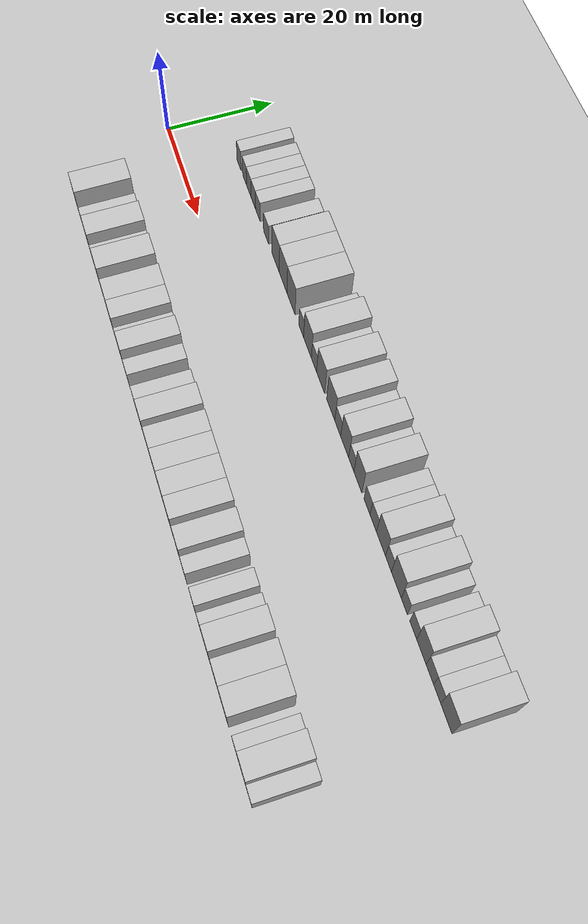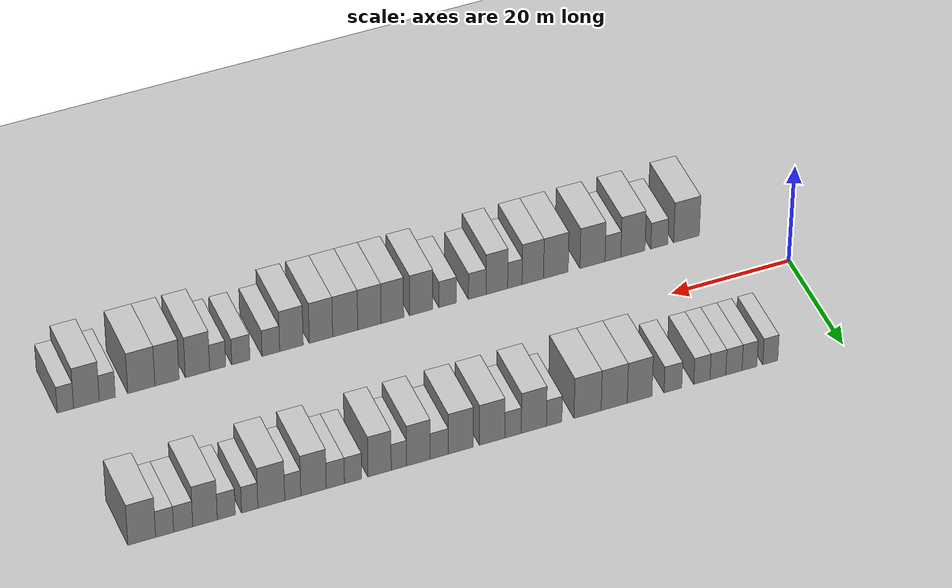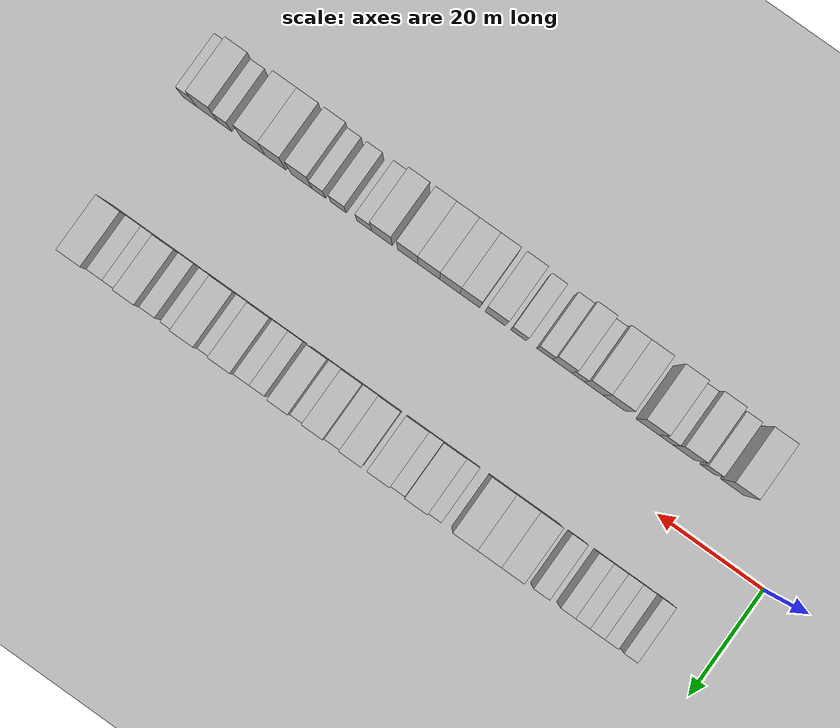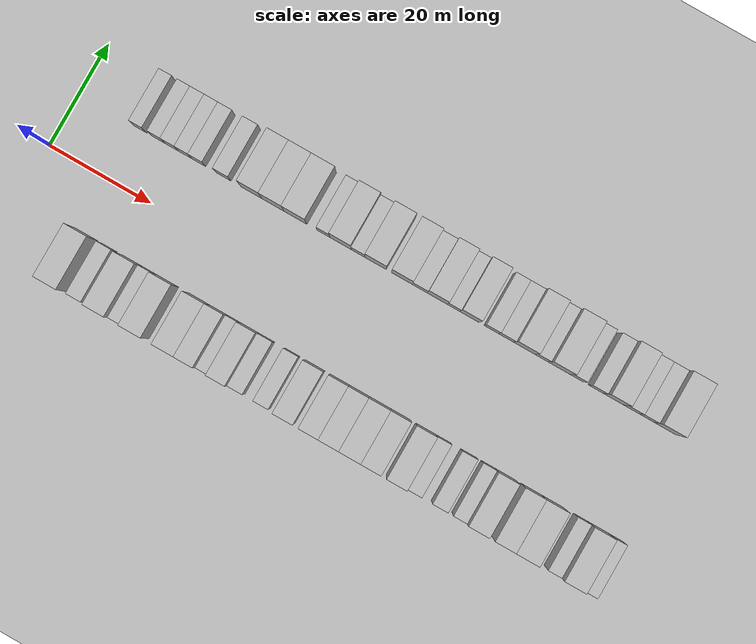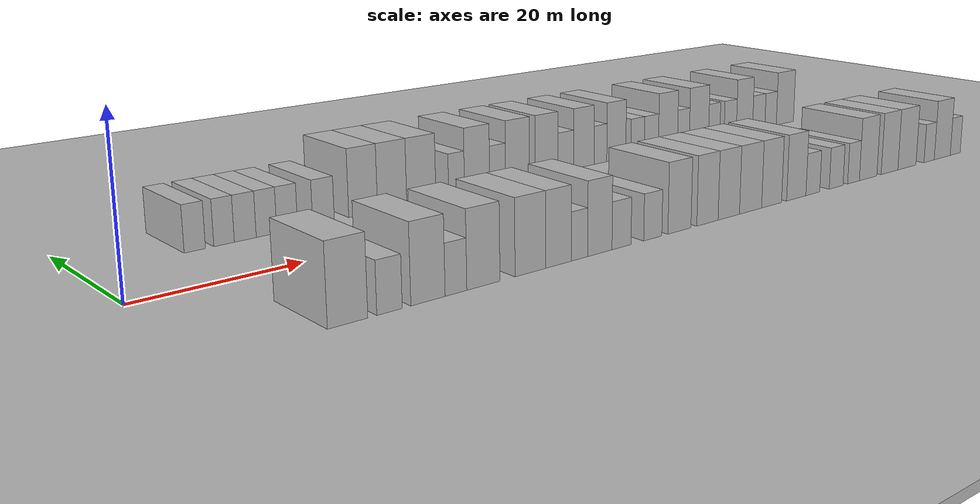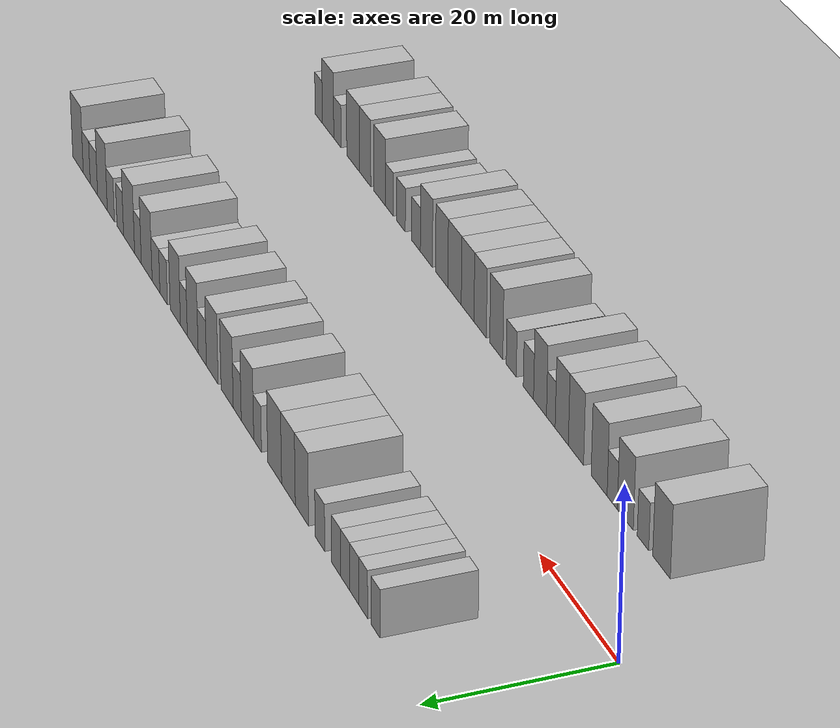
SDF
<sdf version="1.6">
 <world name="default">
  <include><name>ground_plane_1</name><uri>model://HANNAS_ground_plane</uri></include>
  <include>
   <name>ground_plane_2</name>
   <uri>model://HANNAS_ground_plane</uri>
   <pose>100 0 0  0 0 0</pose>
  </include>
  <model name="building_1">
   <static>1</static>
   <pose>12.2512 15.0000 0 0.000000 0.000000 1.570796</pose>
   <link name="link">
    <pose>0 0 3.00 0 0 0</pose>
    <collision name="collision"><geometry><box><size>10.0000 2.5024 6.0000</size></box></geometry></collision>
    <visual name="visual">
     <cast_shadows>0</cast_shadows>
     <geometry><box><size>10.0000 2.5024 6.0000</size></box></geometry>
     <material>
      <script>
       <uri>model://HANNAS_wall/materials/scripts</uri>
       <uri>model://HANNAS_wall/materials/textures</uri>
       <name>vrc/HANNAS_wall</name>
      </script>
     </material>
    </visual>
   </link>
  </model>
  <model name="building_2">
   <static>1</static>
   <pose>15.7438 15.0000 0 0.000000 0.000000 1.570796</pose>
   <link name="link">
    <pose>0 0 3.00 0 0 0</pose>
    <collision name="collision"><geometry><box><size>10.0000 2.4828 6.0000</size></box></geometry></collision>
    <visual name="visual">
     <cast_shadows>0</cast_shadows>
     <geometry><box><size>10.0000 2.4828 6.0000</size></box></geometry>
     <material>
      <script>
       <uri>model://HANNAS_wall/materials/scripts</uri>
       <uri>model://HANNAS_wall/materials/textures</uri>
       <name>vrc/HANNAS_wall</name>
      </script>
     </material>
    </visual>
   </link>
  </model>
  <model name="building_3">
   <static>1</static>
   <pose>18.3443 15.0000 0 0.000000 0.000000 1.570796</pose>
   <link name="link">
    <pose>0 0 3.00 0 0 0</pose>
    <collision name="collision"><geometry><box><size>10.0000 2.7182 6.0000</size></box></geometry></collision>
    <visual name="visual">
     <cast_shadows>0</cast_shadows>
     <geometry><box><size>10.0000 2.7182 6.0000</size></box></geometry>
     <material>
      <script>
       <uri>model://HANNAS_wall/materials/scripts</uri>
       <uri>model://HANNAS_wall/materials/textures</uri>
       <name>vrc/HANNAS_wall</name>
      </script>
     </material>
    </visual>
   </link>
  </model>
  <model name="building_4">
   <static>1</static>
   <pose>21.0118 15.0000 0 0.000000 0.000000 1.570796</pose>
   <link name="link">
    <pose>0 0 3.00 0 0 0</pose>
    <collision name="collision"><geometry><box><size>10.0000 2.6168 6.0000</size></box></geometry></collision>
    <visual name="visual">
     <cast_shadows>0</cast_shadows>
     <geometry><box><size>10.0000 2.6168 6.0000</size></box></geometry>
     <material>
      <script>
       <uri>model://HANNAS_wall/materials/scripts</uri>
       <uri>model://HANNAS_wall/materials/textures</uri>
       <name>vrc/HANNAS_wall</name>
      </script>
     </material>
    </visual>
   </link>
  </model>
  <model name="building_5">
   <static>1</static>
   <pose>23.6738 15.0000 0 0.000000 0.000000 1.570796</pose>
   <link name="link">
    <pose>0 0 3.00 0 0 0</pose>
    <collision name="collision"><geometry><box><size>10.0000 2.7073 6.0000</size></box></geometry></collision>
    <visual name="visual">
     <cast_shadows>0</cast_shadows>
     <geometry><box><size>10.0000 2.7073 6.0000</size></box></geometry>
     <material>
      <script>
       <uri>model://HANNAS_wall/materials/scripts</uri>
       <uri>model://HANNAS_wall/materials/textures</uri>
       <name>vrc/HANNAS_wall</name>
      </script>
     </material>
    </visual>
   </link>
  </model>
  <model name="building_6">
   <static>1</static>
   <pose>28.4945 15.0000 0 0.000000 0.000000 1.570796</pose>
   <link name="link">
    <pose>0 0 3.00 0 0 0</pose>
    <collision name="collision"><geometry><box><size>10.0000 2.9341 6.0000</size></box></geometry></collision>
    <visual name="visual">
     <cast_shadows>0</cast_shadows>
     <geometry><box><size>10.0000 2.9341 6.0000</size></box></geometry>
     <material>
      <script>
       <uri>model://HANNAS_wall/materials/scripts</uri>
       <uri>model://HANNAS_wall/materials/textures</uri>
       <name>vrc/HANNAS_wall</name>
      </script>
     </material>
    </visual>
   </link>
  </model>
  <model name="building_7">
   <static>1</static>
   <pose>34.0111 15.0000 0 0.000000 0.000000 1.570796</pose>
   <link name="link">
    <pose>0 0 4.50 0 0 0</pose>
    <collision name="collision"><geometry><box><size>10.0000 4.0992 9.0000</size></box></geometry></collision>
    <visual name="visual">
     <cast_shadows>0</cast_shadows>
     <geometry><box><size>10.0000 4.0992 9.0000</size></box></geometry>
     <material>
      <script>
       <uri>model://HANNAS_wall/materials/scripts</uri>
       <uri>model://HANNAS_wall/materials/textures</uri>
       <name>vrc/HANNAS_wall</name>
      </script>
     </material>
    </visual>
   </link>
  </model>
  <model name="building_8">
   <static>1</static>
   <pose>38.2104 15.0000 0 0.000000 0.000000 1.570796</pose>
   <link name="link">
    <pose>0 0 4.50 0 0 0</pose>
    <collision name="collision"><geometry><box><size>10.0000 4.2993 9.0000</size></box></geometry></collision>
    <visual name="visual">
     <cast_shadows>0</cast_shadows>
     <geometry><box><size>10.0000 4.2993 9.0000</size></box></geometry>
     <material>
      <script>
       <uri>model://HANNAS_wall/materials/scripts</uri>
       <uri>model://HANNAS_wall/materials/textures</uri>
       <name>vrc/HANNAS_wall</name>
      </script>
     </material>
    </visual>
   </link>
  </model>
  <model name="building_9">
   <static>1</static>
   <pose>42.5813 15.0000 0 0.000000 0.000000 1.570796</pose>
   <link name="link">
    <pose>0 0 4.50 0 0 0</pose>
    <collision name="collision"><geometry><box><size>10.0000 4.4426 9.0000</size></box></geometry></collision>
    <visual name="visual">
     <cast_shadows>0</cast_shadows>
     <geometry><box><size>10.0000 4.4426 9.0000</size></box></geometry>
     <material>
      <script>
       <uri>model://HANNAS_wall/materials/scripts</uri>
       <uri>model://HANNAS_wall/materials/textures</uri>
       <name>vrc/HANNAS_wall</name>
      </script>
     </material>
    </visual>
   </link>
  </model>
  <model name="building_10">
   <static>1</static>
   <pose>48.0679 15.0000 0 0.000000 0.000000 1.570796</pose>
   <link name="link">
    <pose>0 0 3.00 0 0 0</pose>
    <collision name="collision"><geometry><box><size>10.0000 2.5305 6.0000</size></box></geometry></collision>
    <visual name="visual">
     <cast_shadows>0</cast_shadows>
     <geometry><box><size>10.0000 2.5305 6.0000</size></box></geometry>
     <material>
      <script>
       <uri>model://HANNAS_wall/materials/scripts</uri>
       <uri>model://HANNAS_wall/materials/textures</uri>
       <name>vrc/HANNAS_wall</name>
      </script>
     </material>
    </visual>
   </link>
  </model>
  <model name="building_11">
   <static>1</static>
   <pose>51.3964 15.0000 0 0.000000 0.000000 1.570796</pose>
   <link name="link">
    <pose>0 0 4.50 0 0 0</pose>
    <collision name="collision"><geometry><box><size>10.0000 4.1266 9.0000</size></box></geometry></collision>
    <visual name="visual">
     <cast_shadows>0</cast_shadows>
     <geometry><box><size>10.0000 4.1266 9.0000</size></box></geometry>
     <material>
      <script>
       <uri>model://HANNAS_wall/materials/scripts</uri>
       <uri>model://HANNAS_wall/materials/textures</uri>
       <name>vrc/HANNAS_wall</name>
      </script>
     </material>
    </visual>
   </link>
  </model>
  <model name="building_12">
   <static>1</static>
   <pose>54.7969 15.0000 0 0.000000 0.000000 1.570796</pose>
   <link name="link">
    <pose>0 0 3.00 0 0 0</pose>
    <collision name="collision"><geometry><box><size>10.0000 2.6744 6.0000</size></box></geometry></collision>
    <visual name="visual">
     <cast_shadows>0</cast_shadows>
     <geometry><box><size>10.0000 2.6744 6.0000</size></box></geometry>
     <material>
      <script>
       <uri>model://HANNAS_wall/materials/scripts</uri>
       <uri>model://HANNAS_wall/materials/textures</uri>
       <name>vrc/HANNAS_wall</name>
      </script>
     </material>
    </visual>
   </link>
  </model>
  <model name="building_13">
   <static>1</static>
   <pose>58.2003 15.0000 0 0.000000 0.000000 1.570796</pose>
   <link name="link">
    <pose>0 0 4.50 0 0 0</pose>
    <collision name="collision"><geometry><box><size>10.0000 4.1324 9.0000</size></box></geometry></collision>
    <visual name="visual">
     <cast_shadows>0</cast_shadows>
     <geometry><box><size>10.0000 4.1324 9.0000</size></box></geometry>
     <material>
      <script>
       <uri>model://HANNAS_wall/materials/scripts</uri>
       <uri>model://HANNAS_wall/materials/textures</uri>
       <name>vrc/HANNAS_wall</name>
      </script>
     </material>
    </visual>
   </link>
  </model>
  <model name="building_14">
   <static>1</static>
   <pose>63.2929 15.0000 0 0.000000 0.000000 1.570796</pose>
   <link name="link">
    <pose>0 0 4.50 0 0 0</pose>
    <collision name="collision"><geometry><box><size>10.0000 4.0527 9.0000</size></box></geometry></collision>
    <visual name="visual">
     <cast_shadows>0</cast_shadows>
     <geometry><box><size>10.0000 4.0527 9.0000</size></box></geometry>
     <material>
      <script>
       <uri>model://HANNAS_wall/materials/scripts</uri>
       <uri>model://HANNAS_wall/materials/textures</uri>
       <name>vrc/HANNAS_wall</name>
      </script>
     </material>
    </visual>
   </link>
  </model>
  <model name="building_15">
   <static>1</static>
   <pose>66.7770 15.0000 0 0.000000 0.000000 1.570796</pose>
   <link name="link">
    <pose>0 0 3.00 0 0 0</pose>
    <collision name="collision"><geometry><box><size>10.0000 2.9155 6.0000</size></box></geometry></collision>
    <visual name="visual">
     <cast_shadows>0</cast_shadows>
     <geometry><box><size>10.0000 2.9155 6.0000</size></box></geometry>
     <material>
      <script>
       <uri>model://HANNAS_wall/materials/scripts</uri>
       <uri>model://HANNAS_wall/materials/textures</uri>
       <name>vrc/HANNAS_wall</name>
      </script>
     </material>
    </visual>
   </link>
  </model>
  <model name="building_16">
   <static>1</static>
   <pose>70.1506 15.0000 0 0.000000 0.000000 1.570796</pose>
   <link name="link">
    <pose>0 0 4.50 0 0 0</pose>
    <collision name="collision"><geometry><box><size>10.0000 3.8317 9.0000</size></box></geometry></collision>
    <visual name="visual">
     <cast_shadows>0</cast_shadows>
     <geometry><box><size>10.0000 3.8317 9.0000</size></box></geometry>
     <material>
      <script>
       <uri>model://HANNAS_wall/materials/scripts</uri>
       <uri>model://HANNAS_wall/materials/textures</uri>
       <name>vrc/HANNAS_wall</name>
      </script>
     </material>
    </visual>
   </link>
  </model>
  <model name="building_17">
   <static>1</static>
   <pose>73.3016 15.0000 0 0.000000 0.000000 1.570796</pose>
   <link name="link">
    <pose>0 0 3.00 0 0 0</pose>
    <collision name="collision"><geometry><box><size>10.0000 2.4702 6.0000</size></box></geometry></collision>
    <visual name="visual">
     <cast_shadows>0</cast_shadows>
     <geometry><box><size>10.0000 2.4702 6.0000</size></box></geometry>
     <material>
      <script>
       <uri>model://HANNAS_wall/materials/scripts</uri>
       <uri>model://HANNAS_wall/materials/textures</uri>
       <name>vrc/HANNAS_wall</name>
      </script>
     </material>
    </visual>
   </link>
  </model>
  <model name="building_18">
   <static>1</static>
   <pose>76.4071 15.0000 0 0.000000 0.000000 1.570796</pose>
   <link name="link">
    <pose>0 0 4.50 0 0 0</pose>
    <collision name="collision"><geometry><box><size>10.0000 3.7410 9.0000</size></box></geometry></collision>
    <visual name="visual">
     <cast_shadows>0</cast_shadows>
     <geometry><box><size>10.0000 3.7410 9.0000</size></box></geometry>
     <material>
      <script>
       <uri>model://HANNAS_wall/materials/scripts</uri>
       <uri>model://HANNAS_wall/materials/textures</uri>
       <name>vrc/HANNAS_wall</name>
      </script>
     </material>
    </visual>
   </link>
  </model>
  <model name="building_19">
   <static>1</static>
   <pose>80.6656 15.0000 0 0.000000 0.000000 1.570796</pose>
   <link name="link">
    <pose>0 0 3.00 0 0 0</pose>
    <collision name="collision"><geometry><box><size>10.0000 2.7760 6.0000</size></box></geometry></collision>
    <visual name="visual">
     <cast_shadows>0</cast_shadows>
     <geometry><box><size>10.0000 2.7760 6.0000</size></box></geometry>
     <material>
      <script>
       <uri>model://HANNAS_wall/materials/scripts</uri>
       <uri>model://HANNAS_wall/materials/textures</uri>
       <name>vrc/HANNAS_wall</name>
      </script>
     </material>
    </visual>
   </link>
  </model>
  <model name="building_20">
   <static>1</static>
   <pose>83.5055 15.0000 0 0.000000 0.000000 1.570796</pose>
   <link name="link">
    <pose>0 0 3.00 0 0 0</pose>
    <collision name="collision"><geometry><box><size>10.0000 2.9038 6.0000</size></box></geometry></collision>
    <visual name="visual">
     <cast_shadows>0</cast_shadows>
     <geometry><box><size>10.0000 2.9038 6.0000</size></box></geometry>
     <material>
      <script>
       <uri>model://HANNAS_wall/materials/scripts</uri>
       <uri>model://HANNAS_wall/materials/textures</uri>
       <name>vrc/HANNAS_wall</name>
      </script>
     </material>
    </visual>
   </link>
  </model>
  <model name="building_21">
   <static>1</static>
   <pose>86.9885 15.0000 0 0.000000 0.000000 1.570796</pose>
   <link name="link">
    <pose>0 0 4.50 0 0 0</pose>
    <collision name="collision"><geometry><box><size>10.0000 4.0622 9.0000</size></box></geometry></collision>
    <visual name="visual">
     <cast_shadows>0</cast_shadows>
     <geometry><box><size>10.0000 4.0622 9.0000</size></box></geometry>
     <material>
      <script>
       <uri>model://HANNAS_wall/materials/scripts</uri>
       <uri>model://HANNAS_wall/materials/textures</uri>
       <name>vrc/HANNAS_wall</name>
      </script>
     </material>
    </visual>
   </link>
  </model>
  <model name="building_22">
   <static>1</static>
   <pose>90.3040 15.0000 0 0.000000 0.000000 1.570796</pose>
   <link name="link">
    <pose>0 0 3.00 0 0 0</pose>
    <collision name="collision"><geometry><box><size>10.0000 2.5687 6.0000</size></box></geometry></collision>
    <visual name="visual">
     <cast_shadows>0</cast_shadows>
     <geometry><box><size>10.0000 2.5687 6.0000</size></box></geometry>
     <material>
      <script>
       <uri>model://HANNAS_wall/materials/scripts</uri>
       <uri>model://HANNAS_wall/materials/textures</uri>
       <name>vrc/HANNAS_wall</name>
      </script>
     </material>
    </visual>
   </link>
  </model>
  <model name="building_23">
   <static>1</static>
   <pose>93.7211 15.0000 0 0.000000 0.000000 1.570796</pose>
   <link name="link">
    <pose>0 0 4.50 0 0 0</pose>
    <collision name="collision"><geometry><box><size>10.0000 4.2655 9.0000</size></box></geometry></collision>
    <visual name="visual">
     <cast_shadows>0</cast_shadows>
     <geometry><box><size>10.0000 4.2655 9.0000</size></box></geometry>
     <material>
      <script>
       <uri>model://HANNAS_wall/materials/scripts</uri>
       <uri>model://HANNAS_wall/materials/textures</uri>
       <name>vrc/HANNAS_wall</name>
      </script>
     </material>
    </visual>
   </link>
  </model>
  <model name="building_24">
   <static>1</static>
   <pose>97.1481 15.0000 0 0.000000 0.000000 1.570796</pose>
   <link name="link">
    <pose>0 0 3.00 0 0 0</pose>
    <collision name="collision"><geometry><box><size>10.0000 2.5886 6.0000</size></box></geometry></collision>
    <visual name="visual">
     <cast_shadows>0</cast_shadows>
     <geometry><box><size>10.0000 2.5886 6.0000</size></box></geometry>
     <material>
      <script>
       <uri>model://HANNAS_wall/materials/scripts</uri>
       <uri>model://HANNAS_wall/materials/textures</uri>
       <name>vrc/HANNAS_wall</name>
      </script>
     </material>
    </visual>
   </link>
  </model>
  <model name="building_25">
   <static>1</static>
   <pose>100.8649 15.0000 0 0.000000 0.000000 1.570796</pose>
   <link name="link">
    <pose>0 0 3.00 0 0 0</pose>
    <collision name="collision"><geometry><box><size>10.0000 2.8450 6.0000</size></box></geometry></collision>
    <visual name="visual">
     <cast_shadows>0</cast_shadows>
     <geometry><box><size>10.0000 2.8450 6.0000</size></box></geometry>
     <material>
      <script>
       <uri>model://HANNAS_wall/materials/scripts</uri>
       <uri>model://HANNAS_wall/materials/textures</uri>
       <name>vrc/HANNAS_wall</name>
      </script>
     </material>
    </visual>
   </link>
  </model>
  <model name="building_26">
   <static>1</static>
   <pose>104.2250 15.0000 0 0.000000 0.000000 1.570796</pose>
   <link name="link">
    <pose>0 0 4.50 0 0 0</pose>
    <collision name="collision"><geometry><box><size>10.0000 3.8752 9.0000</size></box></geometry></collision>
    <visual name="visual">
     <cast_shadows>0</cast_shadows>
     <geometry><box><size>10.0000 3.8752 9.0000</size></box></geometry>
     <material>
      <script>
       <uri>model://HANNAS_wall/materials/scripts</uri>
       <uri>model://HANNAS_wall/materials/textures</uri>
       <name>vrc/HANNAS_wall</name>
      </script>
     </material>
    </visual>
   </link>
  </model>
  <model name="building_27">
   <static>1</static>
   <pose>107.6613 15.0000 0 0.000000 0.000000 1.570796</pose>
   <link name="link">
    <pose>0 0 3.00 0 0 0</pose>
    <collision name="collision"><geometry><box><size>10.0000 2.9974 6.0000</size></box></geometry></collision>
    <visual name="visual">
     <cast_shadows>0</cast_shadows>
     <geometry><box><size>10.0000 2.9974 6.0000</size></box></geometry>
     <material>
      <script>
       <uri>model://HANNAS_wall/materials/scripts</uri>
       <uri>model://HANNAS_wall/materials/textures</uri>
       <name>vrc/HANNAS_wall</name>
      </script>
     </material>
    </visual>
   </link>
  </model>
  <model name="building_28">
   <static>1</static>
   <pose>110.5838 15.0000 0 0.000000 0.000000 1.570796</pose>
   <link name="link">
    <pose>0 0 3.00 0 0 0</pose>
    <collision name="collision"><geometry><box><size>10.0000 2.8476 6.0000</size></box></geometry></collision>
    <visual name="visual">
     <cast_shadows>0</cast_shadows>
     <geometry><box><size>10.0000 2.8476 6.0000</size></box></geometry>
     <material>
      <script>
       <uri>model://HANNAS_wall/materials/scripts</uri>
       <uri>model://HANNAS_wall/materials/textures</uri>
       <name>vrc/HANNAS_wall</name>
      </script>
     </material>
    </visual>
   </link>
  </model>
  <model name="building_29">
   <static>1</static>
   <pose>114.1921 15.0000 0 0.000000 0.000000 1.570796</pose>
   <link name="link">
    <pose>0 0 4.50 0 0 0</pose>
    <collision name="collision"><geometry><box><size>10.0000 4.3690 9.0000</size></box></geometry></collision>
    <visual name="visual">
     <cast_shadows>0</cast_shadows>
     <geometry><box><size>10.0000 4.3690 9.0000</size></box></geometry>
     <material>
      <script>
       <uri>model://HANNAS_wall/materials/scripts</uri>
       <uri>model://HANNAS_wall/materials/textures</uri>
       <name>vrc/HANNAS_wall</name>
      </script>
     </material>
    </visual>
   </link>
  </model>
  <model name="building_57">
   <static>1</static>
   <pose>13.1892 -15.0000 0 0.000000 0.000000 1.570796</pose>
   <link name="link">
    <pose>0 0 4.50 0 0 0</pose>
    <collision name="collision"><geometry><box><size>10.0000 4.3785 9.0000</size></box></geometry></collision>
    <visual name="visual">
     <cast_shadows>0</cast_shadows>
     <geometry><box><size>10.0000 4.3785 9.0000</size></box></geometry>
     <material>
      <script>
       <uri>model://HANNAS_wall/materials/scripts</uri>
       <uri>model://HANNAS_wall/materials/textures</uri>
       <name>vrc/HANNAS_wall</name>
      </script>
     </material>
    </visual>
   </link>
  </model>
  <model name="building_58">
   <static>1</static>
   <pose>17.8253 -15.0000 0 0.000000 0.000000 1.570796</pose>
   <link name="link">
    <pose>0 0 3.00 0 0 0</pose>
    <collision name="collision"><geometry><box><size>10.0000 2.8936 6.0000</size></box></geometry></collision>
    <visual name="visual">
     <cast_shadows>0</cast_shadows>
     <geometry><box><size>10.0000 2.8936 6.0000</size></box></geometry>
     <material>
      <script>
       <uri>model://HANNAS_wall/materials/scripts</uri>
       <uri>model://HANNAS_wall/materials/textures</uri>
       <name>vrc/HANNAS_wall</name>
      </script>
     </material>
    </visual>
   </link>
  </model>
  <model name="building_59">
   <static>1</static>
   <pose>22.3184 -15.0000 0 0.000000 0.000000 1.570796</pose>
   <link name="link">
    <pose>0 0 4.50 0 0 0</pose>
    <collision name="collision"><geometry><box><size>10.0000 4.0927 9.0000</size></box></geometry></collision>
    <visual name="visual">
     <cast_shadows>0</cast_shadows>
     <geometry><box><size>10.0000 4.0927 9.0000</size></box></geometry>
     <material>
      <script>
       <uri>model://HANNAS_wall/materials/scripts</uri>
       <uri>model://HANNAS_wall/materials/textures</uri>
       <name>vrc/HANNAS_wall</name>
      </script>
     </material>
    </visual>
   </link>
  </model>
  <model name="building_60">
   <static>1</static>
   <pose>25.7051 -15.0000 0 0.000000 0.000000 1.570796</pose>
   <link name="link">
    <pose>0 0 3.00 0 0 0</pose>
    <collision name="collision"><geometry><box><size>10.0000 2.6806 6.0000</size></box></geometry></collision>
    <visual name="visual">
     <cast_shadows>0</cast_shadows>
     <geometry><box><size>10.0000 2.6806 6.0000</size></box></geometry>
     <material>
      <script>
       <uri>model://HANNAS_wall/materials/scripts</uri>
       <uri>model://HANNAS_wall/materials/textures</uri>
       <name>vrc/HANNAS_wall</name>
      </script>
     </material>
    </visual>
   </link>
  </model>
  <model name="building_61">
   <static>1</static>
   <pose>29.1625 -15.0000 0 0.000000 0.000000 1.570796</pose>
   <link name="link">
    <pose>0 0 4.50 0 0 0</pose>
    <collision name="collision"><geometry><box><size>10.0000 4.2343 9.0000</size></box></geometry></collision>
    <visual name="visual">
     <cast_shadows>0</cast_shadows>
     <geometry><box><size>10.0000 4.2343 9.0000</size></box></geometry>
     <material>
      <script>
       <uri>model://HANNAS_wall/materials/scripts</uri>
       <uri>model://HANNAS_wall/materials/textures</uri>
       <name>vrc/HANNAS_wall</name>
      </script>
     </material>
    </visual>
   </link>
  </model>
  <model name="building_62">
   <static>1</static>
   <pose>35.3511 -15.0000 0 0.000000 0.000000 1.570796</pose>
   <link name="link">
    <pose>0 0 4.50 0 0 0</pose>
    <collision name="collision"><geometry><box><size>10.0000 4.1427 9.0000</size></box></geometry></collision>
    <visual name="visual">
     <cast_shadows>0</cast_shadows>
     <geometry><box><size>10.0000 4.1427 9.0000</size></box></geometry>
     <material>
      <script>
       <uri>model://HANNAS_wall/materials/scripts</uri>
       <uri>model://HANNAS_wall/materials/textures</uri>
       <name>vrc/HANNAS_wall</name>
      </script>
     </material>
    </visual>
   </link>
  </model>
  <model name="building_63">
   <static>1</static>
   <pose>39.2301 -15.0000 0 0.000000 0.000000 1.570796</pose>
   <link name="link">
    <pose>0 0 4.50 0 0 0</pose>
    <collision name="collision"><geometry><box><size>10.0000 3.6155 9.0000</size></box></geometry></collision>
    <visual name="visual">
     <cast_shadows>0</cast_shadows>
     <geometry><box><size>10.0000 3.6155 9.0000</size></box></geometry>
     <material>
      <script>
       <uri>model://HANNAS_wall/materials/scripts</uri>
       <uri>model://HANNAS_wall/materials/textures</uri>
       <name>vrc/HANNAS_wall</name>
      </script>
     </material>
    </visual>
   </link>
  </model>
  <model name="building_64">
   <static>1</static>
   <pose>42.2406 -15.0000 0 0.000000 0.000000 1.570796</pose>
   <link name="link">
    <pose>0 0 3.00 0 0 0</pose>
    <collision name="collision"><geometry><box><size>10.0000 2.4054 6.0000</size></box></geometry></collision>
    <visual name="visual">
     <cast_shadows>0</cast_shadows>
     <geometry><box><size>10.0000 2.4054 6.0000</size></box></geometry>
     <material>
      <script>
       <uri>model://HANNAS_wall/materials/scripts</uri>
       <uri>model://HANNAS_wall/materials/textures</uri>
       <name>vrc/HANNAS_wall</name>
      </script>
     </material>
    </visual>
   </link>
  </model>
  <model name="building_65">
   <static>1</static>
   <pose>45.2627 -15.0000 0 0.000000 0.000000 1.570796</pose>
   <link name="link">
    <pose>0 0 4.50 0 0 0</pose>
    <collision name="collision"><geometry><box><size>10.0000 3.6388 9.0000</size></box></geometry></collision>
    <visual name="visual">
     <cast_shadows>0</cast_shadows>
     <geometry><box><size>10.0000 3.6388 9.0000</size></box></geometry>
     <material>
      <script>
       <uri>model://HANNAS_wall/materials/scripts</uri>
       <uri>model://HANNAS_wall/materials/textures</uri>
       <name>vrc/HANNAS_wall</name>
      </script>
     </material>
    </visual>
   </link>
  </model>
  <model name="building_66">
   <static>1</static>
   <pose>48.5496 -15.0000 0 0.000000 0.000000 1.570796</pose>
   <link name="link">
    <pose>0 0 3.00 0 0 0</pose>
    <collision name="collision"><geometry><box><size>10.0000 2.9351 6.0000</size></box></geometry></collision>
    <visual name="visual">
     <cast_shadows>0</cast_shadows>
     <geometry><box><size>10.0000 2.9351 6.0000</size></box></geometry>
     <material>
      <script>
       <uri>model://HANNAS_wall/materials/scripts</uri>
       <uri>model://HANNAS_wall/materials/textures</uri>
       <name>vrc/HANNAS_wall</name>
      </script>
     </material>
    </visual>
   </link>
  </model>
  <model name="building_67">
   <static>1</static>
   <pose>53.4762 -15.0000 0 0.000000 0.000000 1.570796</pose>
   <link name="link">
    <pose>0 0 3.00 0 0 0</pose>
    <collision name="collision"><geometry><box><size>10.0000 2.9179 6.0000</size></box></geometry></collision>
    <visual name="visual">
     <cast_shadows>0</cast_shadows>
     <geometry><box><size>10.0000 2.9179 6.0000</size></box></geometry>
     <material>
      <script>
       <uri>model://HANNAS_wall/materials/scripts</uri>
       <uri>model://HANNAS_wall/materials/textures</uri>
       <name>vrc/HANNAS_wall</name>
      </script>
     </material>
    </visual>
   </link>
  </model>
  <model name="building_68">
   <static>1</static>
   <pose>57.8662 -15.0000 0 0.000000 0.000000 1.570796</pose>
   <link name="link">
    <pose>0 0 4.50 0 0 0</pose>
    <collision name="collision"><geometry><box><size>10.0000 3.8623 9.0000</size></box></geometry></collision>
    <visual name="visual">
     <cast_shadows>0</cast_shadows>
     <geometry><box><size>10.0000 3.8623 9.0000</size></box></geometry>
     <material>
      <script>
       <uri>model://HANNAS_wall/materials/scripts</uri>
       <uri>model://HANNAS_wall/materials/textures</uri>
       <name>vrc/HANNAS_wall</name>
      </script>
     </material>
    </visual>
   </link>
  </model>
  <model name="building_69">
   <static>1</static>
   <pose>62.6625 -15.0000 0 0.000000 0.000000 1.570796</pose>
   <link name="link">
    <pose>0 0 4.50 0 0 0</pose>
    <collision name="collision"><geometry><box><size>10.0000 3.7303 9.0000</size></box></geometry></collision>
    <visual name="visual">
     <cast_shadows>0</cast_shadows>
     <geometry><box><size>10.0000 3.7303 9.0000</size></box></geometry>
     <material>
      <script>
       <uri>model://HANNAS_wall/materials/scripts</uri>
       <uri>model://HANNAS_wall/materials/textures</uri>
       <name>vrc/HANNAS_wall</name>
      </script>
     </material>
    </visual>
   </link>
  </model>
  <model name="building_70">
   <static>1</static>
   <pose>66.4581 -15.0000 0 0.000000 0.000000 1.570796</pose>
   <link name="link">
    <pose>0 0 4.50 0 0 0</pose>
    <collision name="collision"><geometry><box><size>10.0000 3.8610 9.0000</size></box></geometry></collision>
    <visual name="visual">
     <cast_shadows>0</cast_shadows>
     <geometry><box><size>10.0000 3.8610 9.0000</size></box></geometry>
     <material>
      <script>
       <uri>model://HANNAS_wall/materials/scripts</uri>
       <uri>model://HANNAS_wall/materials/textures</uri>
       <name>vrc/HANNAS_wall</name>
      </script>
     </material>
    </visual>
   </link>
  </model>
  <model name="building_71">
   <static>1</static>
   <pose>70.4553 -15.0000 0 0.000000 0.000000 1.570796</pose>
   <link name="link">
    <pose>0 0 4.50 0 0 0</pose>
    <collision name="collision"><geometry><box><size>10.0000 4.1333 9.0000</size></box></geometry></collision>
    <visual name="visual">
     <cast_shadows>0</cast_shadows>
     <geometry><box><size>10.0000 4.1333 9.0000</size></box></geometry>
     <material>
      <script>
       <uri>model://HANNAS_wall/materials/scripts</uri>
       <uri>model://HANNAS_wall/materials/textures</uri>
       <name>vrc/HANNAS_wall</name>
      </script>
     </material>
    </visual>
   </link>
  </model>
  <model name="building_72">
   <static>1</static>
   <pose>74.4442 -15.0000 0 0.000000 0.000000 1.570796</pose>
   <link name="link">
    <pose>0 0 4.50 0 0 0</pose>
    <collision name="collision"><geometry><box><size>10.0000 3.8445 9.0000</size></box></geometry></collision>
    <visual name="visual">
     <cast_shadows>0</cast_shadows>
     <geometry><box><size>10.0000 3.8445 9.0000</size></box></geometry>
     <material>
      <script>
       <uri>model://HANNAS_wall/materials/scripts</uri>
       <uri>model://HANNAS_wall/materials/textures</uri>
       <name>vrc/HANNAS_wall</name>
      </script>
     </material>
    </visual>
   </link>
  </model>
  <model name="building_73">
   <static>1</static>
   <pose>79.3001 -15.0000 0 0.000000 0.000000 1.570796</pose>
   <link name="link">
    <pose>0 0 4.50 0 0 0</pose>
    <collision name="collision"><geometry><box><size>10.0000 3.8674 9.0000</size></box></geometry></collision>
    <visual name="visual">
     <cast_shadows>0</cast_shadows>
     <geometry><box><size>10.0000 3.8674 9.0000</size></box></geometry>
     <material>
      <script>
       <uri>model://HANNAS_wall/materials/scripts</uri>
       <uri>model://HANNAS_wall/materials/textures</uri>
       <name>vrc/HANNAS_wall</name>
      </script>
     </material>
    </visual>
   </link>
  </model>
  <model name="building_74">
   <static>1</static>
   <pose>82.6624 -15.0000 0 0.000000 0.000000 1.570796</pose>
   <link name="link">
    <pose>0 0 3.00 0 0 0</pose>
    <collision name="collision"><geometry><box><size>10.0000 2.8571 6.0000</size></box></geometry></collision>
    <visual name="visual">
     <cast_shadows>0</cast_shadows>
     <geometry><box><size>10.0000 2.8571 6.0000</size></box></geometry>
     <material>
      <script>
       <uri>model://HANNAS_wall/materials/scripts</uri>
       <uri>model://HANNAS_wall/materials/textures</uri>
       <name>vrc/HANNAS_wall</name>
      </script>
     </material>
    </visual>
   </link>
  </model>
  <model name="building_75">
   <static>1</static>
   <pose>87.5683 -15.0000 0 0.000000 0.000000 1.570796</pose>
   <link name="link">
    <pose>0 0 3.00 0 0 0</pose>
    <collision name="collision"><geometry><box><size>10.0000 2.9547 6.0000</size></box></geometry></collision>
    <visual name="visual">
     <cast_shadows>0</cast_shadows>
     <geometry><box><size>10.0000 2.9547 6.0000</size></box></geometry>
     <material>
      <script>
       <uri>model://HANNAS_wall/materials/scripts</uri>
       <uri>model://HANNAS_wall/materials/textures</uri>
       <name>vrc/HANNAS_wall</name>
      </script>
     </material>
    </visual>
   </link>
  </model>
  <model name="building_76">
   <static>1</static>
   <pose>91.3424 -15.0000 0 0.000000 0.000000 1.570796</pose>
   <link name="link">
    <pose>0 0 3.00 0 0 0</pose>
    <collision name="collision"><geometry><box><size>10.0000 2.5934 6.0000</size></box></geometry></collision>
    <visual name="visual">
     <cast_shadows>0</cast_shadows>
     <geometry><box><size>10.0000 2.5934 6.0000</size></box></geometry>
     <material>
      <script>
       <uri>model://HANNAS_wall/materials/scripts</uri>
       <uri>model://HANNAS_wall/materials/textures</uri>
       <name>vrc/HANNAS_wall</name>
      </script>
     </material>
    </visual>
   </link>
  </model>
  <model name="building_77">
   <static>1</static>
   <pose>94.6153 -15.0000 0 0.000000 0.000000 1.570796</pose>
   <link name="link">
    <pose>0 0 4.50 0 0 0</pose>
    <collision name="collision"><geometry><box><size>10.0000 3.9525 9.0000</size></box></geometry></collision>
    <visual name="visual">
     <cast_shadows>0</cast_shadows>
     <geometry><box><size>10.0000 3.9525 9.0000</size></box></geometry>
     <material>
      <script>
       <uri>model://HANNAS_wall/materials/scripts</uri>
       <uri>model://HANNAS_wall/materials/textures</uri>
       <name>vrc/HANNAS_wall</name>
      </script>
     </material>
    </visual>
   </link>
  </model>
  <model name="building_78">
   <static>1</static>
   <pose>99.5565 -15.0000 0 0.000000 0.000000 1.570796</pose>
   <link name="link">
    <pose>0 0 4.50 0 0 0</pose>
    <collision name="collision"><geometry><box><size>10.0000 3.9299 9.0000</size></box></geometry></collision>
    <visual name="visual">
     <cast_shadows>0</cast_shadows>
     <geometry><box><size>10.0000 3.9299 9.0000</size></box></geometry>
     <material>
      <script>
       <uri>model://HANNAS_wall/materials/scripts</uri>
       <uri>model://HANNAS_wall/materials/textures</uri>
       <name>vrc/HANNAS_wall</name>
      </script>
     </material>
    </visual>
   </link>
  </model>
  <model name="building_79">
   <static>1</static>
   <pose>103.7073 -15.0000 0 0.000000 0.000000 1.570796</pose>
   <link name="link">
    <pose>0 0 4.50 0 0 0</pose>
    <collision name="collision"><geometry><box><size>10.0000 4.3716 9.0000</size></box></geometry></collision>
    <visual name="visual">
     <cast_shadows>0</cast_shadows>
     <geometry><box><size>10.0000 4.3716 9.0000</size></box></geometry>
     <material>
      <script>
       <uri>model://HANNAS_wall/materials/scripts</uri>
       <uri>model://HANNAS_wall/materials/textures</uri>
       <name>vrc/HANNAS_wall</name>
      </script>
     </material>
    </visual>
   </link>
  </model>
  <model name="building_80">
   <static>1</static>
   <pose>109.1833 -15.0000 0 0.000000 0.000000 1.570796</pose>
   <link name="link">
    <pose>0 0 3.00 0 0 0</pose>
    <collision name="collision"><geometry><box><size>10.0000 2.5805 6.0000</size></box></geometry></collision>
    <visual name="visual">
     <cast_shadows>0</cast_shadows>
     <geometry><box><size>10.0000 2.5805 6.0000</size></box></geometry>
     <material>
      <script>
       <uri>model://HANNAS_wall/materials/scripts</uri>
       <uri>model://HANNAS_wall/materials/textures</uri>
       <name>vrc/HANNAS_wall</name>
      </script>
     </material>
    </visual>
   </link>
  </model>
  <model name="building_81">
   <static>1</static>
   <pose>112.5316 -15.0000 0 0.000000 0.000000 1.570796</pose>
   <link name="link">
    <pose>0 0 4.50 0 0 0</pose>
    <collision name="collision"><geometry><box><size>10.0000 4.1161 9.0000</size></box></geometry></collision>
    <visual name="visual">
     <cast_shadows>0</cast_shadows>
     <geometry><box><size>10.0000 4.1161 9.0000</size></box></geometry>
     <material>
      <script>
       <uri>model://HANNAS_wall/materials/scripts</uri>
       <uri>model://HANNAS_wall/materials/textures</uri>
       <name>vrc/HANNAS_wall</name>
      </script>
     </material>
    </visual>
   </link>
  </model>
  <model name="building_82">
   <static>1</static>
   <pose>115.8994 -15.0000 0 0.000000 0.000000 1.570796</pose>
   <link name="link">
    <pose>0 0 3.00 0 0 0</pose>
    <collision name="collision"><geometry><box><size>10.0000 2.6196 6.0000</size></box></geometry></collision>
    <visual name="visual">
     <cast_shadows>0</cast_shadows>
     <geometry><box><size>10.0000 2.6196 6.0000</size></box></geometry>
     <material>
      <script>
       <uri>model://HANNAS_wall/materials/scripts</uri>
       <uri>model://HANNAS_wall/materials/textures</uri>
       <name>vrc/HANNAS_wall</name>
      </script>
     </material>
    </visual>
   </link>
  </model>
 </world>
</sdf>
